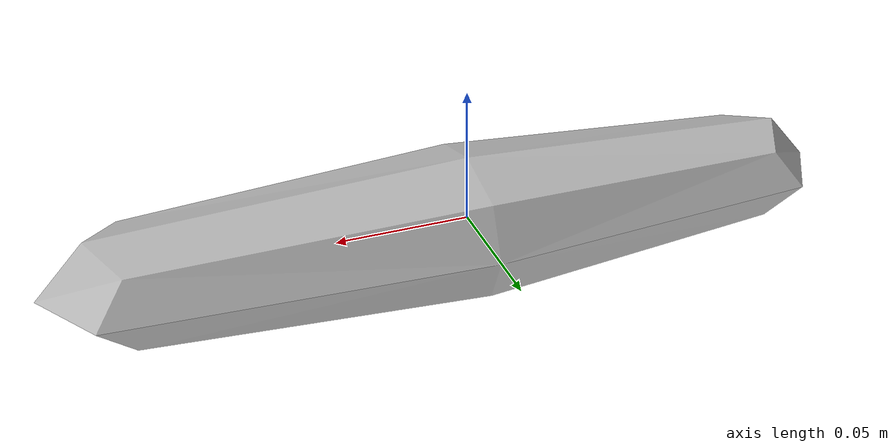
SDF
<?xml version="1.0" ?>
<sdf version="1.5">
  <model name="bread">
    <link name="bread">
      <gravity>false</gravity>
      <inertial>
        <mass>0.02</mass>
      </inertial>
      <collision name="bread_collision">
        <geometry><box><size>0.0001 0.0001 0.0001</size></box></geometry>
          <surface>
            <contact>
              <collide_without_contact>true</collide_without_contact>
            </contact>
          </surface>
      </collision>
      <visual name="bread_visual">
        <geometry>
          <mesh>
            <uri>model://bread/meshes/bread.stl</uri>
          </mesh>
        </geometry>
      </visual>
    </link>
  </model>
</sdf>
